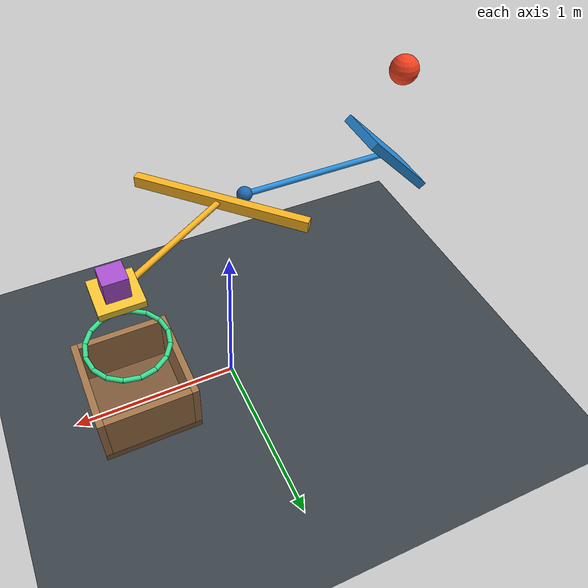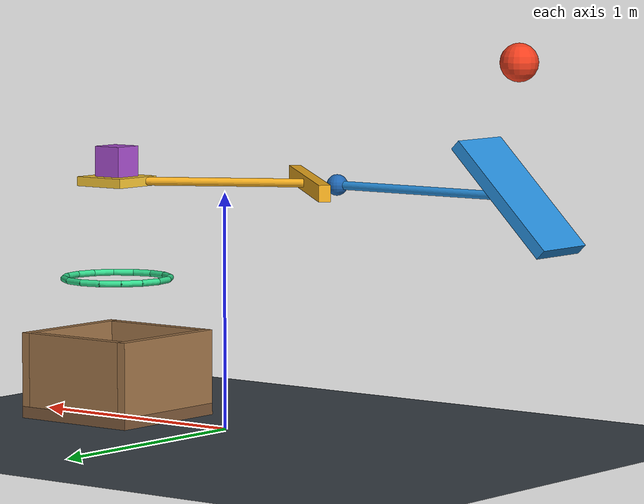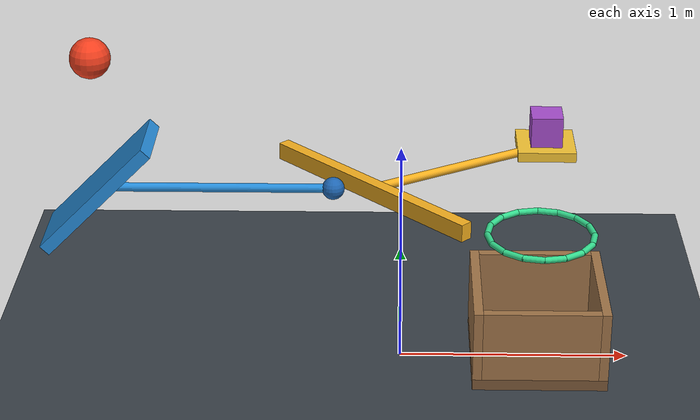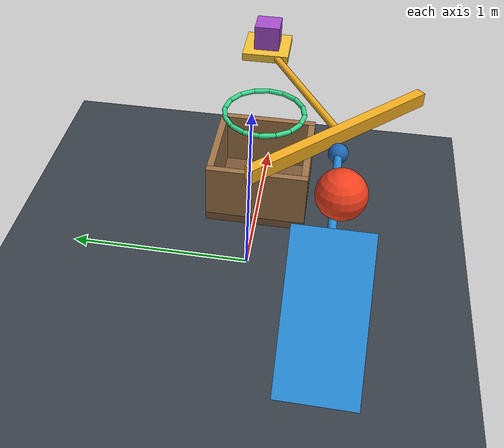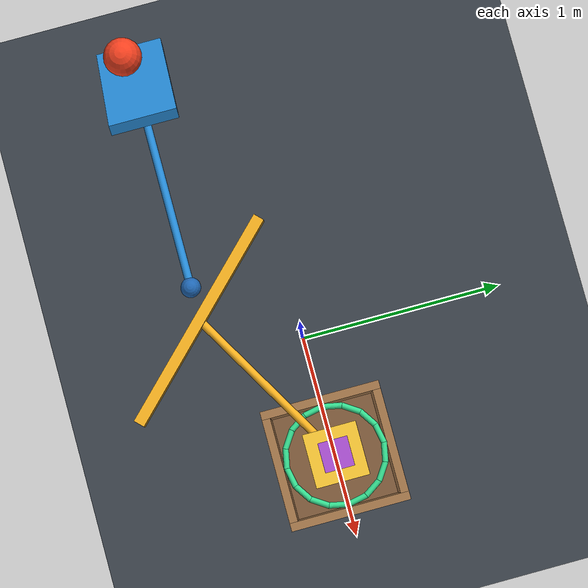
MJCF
<mujoco model="ball_slider_release">
  <compiler angle="radian" autolimits="true"/>
  <option timestep="0.002" gravity="0 0 -9.81" integrator="implicitfast" solver="Newton" iterations="100" cone="elliptic"/>
  <size njmax="1000" nconmax="200"/>
  <visual>
    <headlight ambient="0.35 0.35 0.35" diffuse="0.65 0.65 0.65" specular="0.2 0.2 0.2"/>
    <global azimuth="135" elevation="-25"/>
  </visual>

  <worldbody>
    <light name="key_light" pos="-1 -2 4" dir="0.2 0.3 -1"/>
    <camera name="overview" pos="-2.8 -4 2.8" xyaxes="0.82 -0.57 0 0.27 0.39 0.88"/>
    <geom name="floor" type="plane" size="4 4 0.1" rgba="0.22 0.25 0.28 1" friction="0.9 0.025 0.025" condim="6"/>

    <!-- The ball's initial vertical clearance above the inclined plate is 0.400 m. -->
    <body name="ball" pos="-1.2 -0.42 1.568492424">
      <freejoint name="ball_free"/>
      <geom name="ball_sphere" type="sphere" size="0.08" mass="1" rgba="0.95 0.25 0.12 1" friction="0.6 0.02 0.02" condim="6" solref="0.008 1"/>
    </body>

    <!-- The plate rises toward +x, so the falling ball drives this slider toward +x. -->
    <body name="slider1" pos="-1.2 -0.42 1.02">
      <inertial pos="0.25 0 0" mass="0.18" diaginertia="0.002 0.025 0.025"/>
      <joint name="slider1_slide" type="slide" axis="1 0 0" range="0 0.42" damping="0.06" frictionloss="0.005" solreflimit="0.01 1"/>
      <geom name="slider1_plate" type="box" size="0.30 0.15 0.025" euler="0 -0.785398163 0" rgba="0.15 0.55 0.85 1" priority="1" friction="0.03 0.001 0.001" condim="3" solref="0.008 1"/>
      <geom name="slider1_arm" type="capsule" fromto="0 0 0 0.89 0 0" size="0.018" contype="0" conaffinity="0" rgba="0.15 0.55 0.85 1"/>
      <geom name="slider1_pusher" type="sphere" pos="0.93 0 0" size="0.045" rgba="0.12 0.4 0.7 1" friction="0.03 0.001 0.001" solref="0.008 1"/>
    </body>

    <!-- A roughly 5 cm initial gap separates the pusher from this diagonal cam. -->
    <!-- Its diagonal face converts +x motion into +y withdrawal of the shelf. -->
    <body name="slider2" pos="0.6 0 1.02">
      <inertial pos="-0.3 -0.18 0" mass="0.16" diaginertia="0.012 0.02 0.03"/>
      <joint name="slider2_slide" type="slide" axis="0 1 0" range="0 0.42" damping="0.06" frictionloss="0.005" solreflimit="0.01 1"/>
      <geom name="slider2_cam" type="box" pos="-0.72 -0.42 0" size="0.52 0.025 0.035" euler="0 0 -0.785398163" rgba="0.95 0.68 0.12 1" priority="2" friction="0.015 0.001 0.001" condim="3" solref="0.008 1"/>
      <geom name="slider2_arm" type="capsule" fromto="-0.72 -0.42 0 0 0 0" size="0.018" contype="0" conaffinity="0" rgba="0.95 0.68 0.12 1"/>
      <geom name="slider2_support" type="box" size="0.12 0.12 0.02" rgba="0.95 0.76 0.2 1" priority="2" friction="0.008 0.001 0.001" condim="3" solref="0.008 1"/>
    </body>

    <body name="block" pos="0.6 0 1.105">
      <freejoint name="block_free"/>
      <geom name="block_cube" type="box" size="0.065 0.065 0.065" mass="0.25" rgba="0.65 0.3 0.8 1" friction="0.65 0.01 0.01" solref="0.008 1"/>
    </body>

    <!-- A fixed, sixteen-segment hoop with a clear opening larger than the block. -->
    <body name="hoop" pos="0.6 0 0.60">
      <geom name="hoop_01" type="capsule" fromto="0.23 0 0 0.212492 0.088017 0" size="0.014" rgba="0.2 0.85 0.55 1"/>
      <geom name="hoop_02" type="capsule" fromto="0.212492 0.088017 0 0.162635 0.162635 0" size="0.014" rgba="0.2 0.85 0.55 1"/>
      <geom name="hoop_03" type="capsule" fromto="0.162635 0.162635 0 0.088017 0.212492 0" size="0.014" rgba="0.2 0.85 0.55 1"/>
      <geom name="hoop_04" type="capsule" fromto="0.088017 0.212492 0 0 0.23 0" size="0.014" rgba="0.2 0.85 0.55 1"/>
      <geom name="hoop_05" type="capsule" fromto="0 0.23 0 -0.088017 0.212492 0" size="0.014" rgba="0.2 0.85 0.55 1"/>
      <geom name="hoop_06" type="capsule" fromto="-0.088017 0.212492 0 -0.162635 0.162635 0" size="0.014" rgba="0.2 0.85 0.55 1"/>
      <geom name="hoop_07" type="capsule" fromto="-0.162635 0.162635 0 -0.212492 0.088017 0" size="0.014" rgba="0.2 0.85 0.55 1"/>
      <geom name="hoop_08" type="capsule" fromto="-0.212492 0.088017 0 -0.23 0 0" size="0.014" rgba="0.2 0.85 0.55 1"/>
      <geom name="hoop_09" type="capsule" fromto="-0.23 0 0 -0.212492 -0.088017 0" size="0.014" rgba="0.2 0.85 0.55 1"/>
      <geom name="hoop_10" type="capsule" fromto="-0.212492 -0.088017 0 -0.162635 -0.162635 0" size="0.014" rgba="0.2 0.85 0.55 1"/>
      <geom name="hoop_11" type="capsule" fromto="-0.162635 -0.162635 0 -0.088017 -0.212492 0" size="0.014" rgba="0.2 0.85 0.55 1"/>
      <geom name="hoop_12" type="capsule" fromto="-0.088017 -0.212492 0 0 -0.23 0" size="0.014" rgba="0.2 0.85 0.55 1"/>
      <geom name="hoop_13" type="capsule" fromto="0 -0.23 0 0.088017 -0.212492 0" size="0.014" rgba="0.2 0.85 0.55 1"/>
      <geom name="hoop_14" type="capsule" fromto="0.088017 -0.212492 0 0.162635 -0.162635 0" size="0.014" rgba="0.2 0.85 0.55 1"/>
      <geom name="hoop_15" type="capsule" fromto="0.162635 -0.162635 0 0.212492 -0.088017 0" size="0.014" rgba="0.2 0.85 0.55 1"/>
      <geom name="hoop_16" type="capsule" fromto="0.212492 -0.088017 0 0.23 0 0" size="0.014" rgba="0.2 0.85 0.55 1"/>
    </body>

    <body name="box" pos="0.6 0 0">
      <geom name="box_bottom" type="box" pos="0 0 0.025" size="0.29 0.29 0.025" rgba="0.48 0.34 0.22 1" friction="0.8 0.02 0.02" solref="0.008 1"/>
      <geom name="box_east" type="box" pos="0.27 0 0.21" size="0.02 0.29 0.16" rgba="0.62 0.45 0.28 1" friction="0.8 0.02 0.02"/>
      <geom name="box_west" type="box" pos="-0.27 0 0.21" size="0.02 0.29 0.16" rgba="0.62 0.45 0.28 1" friction="0.8 0.02 0.02"/>
      <geom name="box_north" type="box" pos="0 0.27 0.21" size="0.25 0.02 0.16" rgba="0.62 0.45 0.28 1" friction="0.8 0.02 0.02"/>
      <geom name="box_south" type="box" pos="0 -0.27 0.21" size="0.25 0.02 0.16" rgba="0.62 0.45 0.28 1" friction="0.8 0.02 0.02"/>
    </body>
  </worldbody>

  <keyframe>
    <key name="start" qpos="-1.2 -0.42 1.568492424 1 0 0 0 0 0 0.6 0 1.105 1 0 0 0"/>
  </keyframe>
</mujoco>
